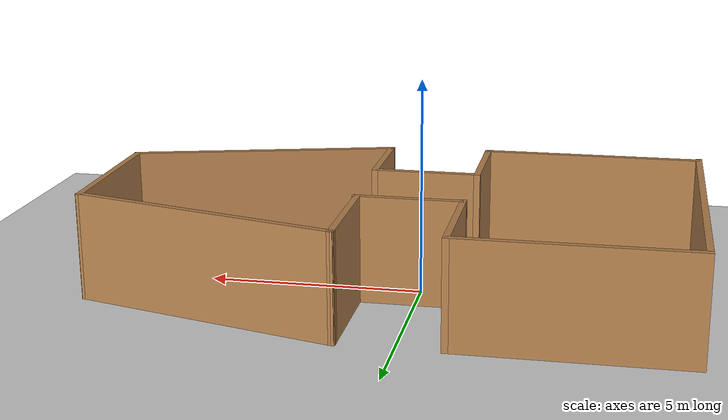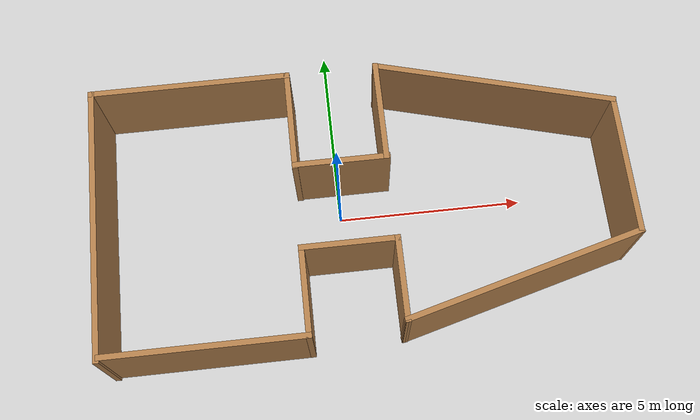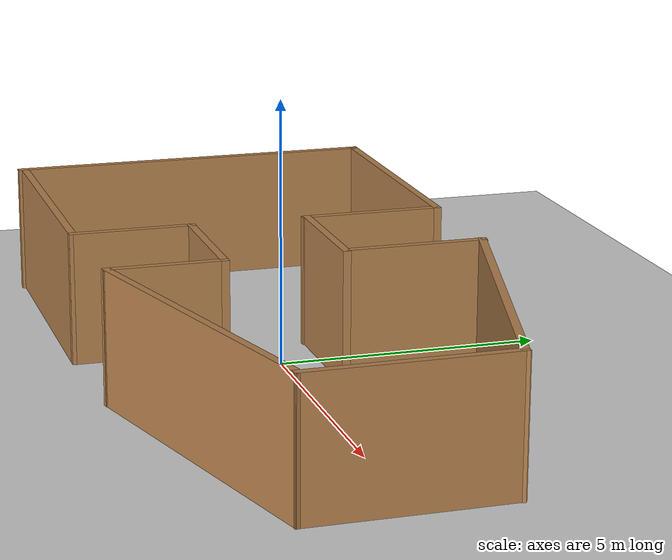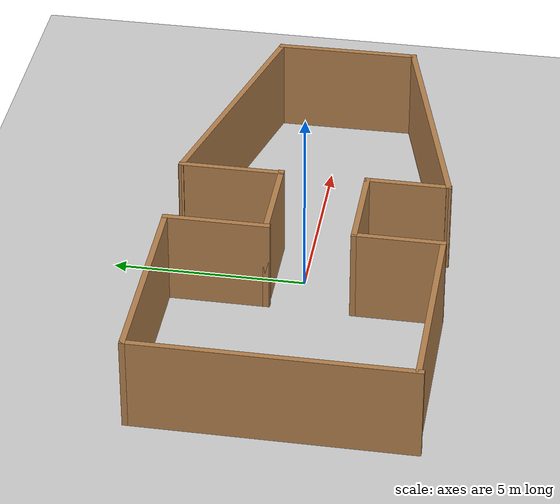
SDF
<sdf version="1.7">
 <world name="default">
  <scene><ambient>0.4 0.4 0.4 1</ambient><background>0.7 0.7 0.7 1</background><shadows>1</shadows></scene>
  <light name="sun" type="directional">
   <pose>0 0 10 0 -0 0</pose>
   <diffuse>0.8 0.8 0.8 1</diffuse>
   <specular>0.2 0.2 0.2 1</specular>
   <attenuation>
    <range>1000</range>
    <constant>0.9</constant>
    <linear>0.01</linear>
    <quadratic>0.001</quadratic>
   </attenuation>
   <direction>-0.5 0.1 -0.9</direction>
   <spot><inner_angle>0</inner_angle><outer_angle>0</outer_angle><falloff>0</falloff></spot>
  </light>
  <model name="ground_plane">
   <static>1</static>
   <link name="link">
    <collision name="collision">
     <geometry><plane><normal>0 0 1</normal><size>100 100</size></plane></geometry>
     <surface>
      <contact><collide_bitmask>65535</collide_bitmask></contact>
      <friction><ode><mu>100</mu><mu2>50</mu2></ode></friction>
     </surface>
    </collision>
    <visual name="visual">
     <cast_shadows>0</cast_shadows>
     <geometry><plane><normal>0 0 1</normal><size>100 100</size></plane></geometry>
     <material>
      <script><uri>file://media/materials/scripts/gazebo.material</uri><name>Gazebo/Grey</name></script>
     </material>
    </visual>
   </link>
  </model>
  <physics type="ode">
   <real_time_update_rate>1000</real_time_update_rate>
   <max_step_size>0.001</max_step_size>
   <real_time_factor>1</real_time_factor>
   <ode>
    <solver>
     <type>quick</type>
     <iters>150</iters>
     <precon_iters>0</precon_iters>
     <sor>1.4</sor>
     <use_dynamic_moi_rescaling>1</use_dynamic_moi_rescaling>
    </solver>
    <constraints>
     <cfm>1e-05</cfm>
     <erp>0.2</erp>
     <contact_max_correcting_vel>2000</contact_max_correcting_vel>
     <contact_surface_layer>0.01</contact_surface_layer>
    </constraints>
   </ode>
  </physics>
  <gravity>0 0 -9.8</gravity>
  <magnetic_field>6e-06 2.3e-05 -4.2e-05</magnetic_field>
  <atmosphere type="adiabatic"/>
  <spherical_coordinates>
   <surface_model>EARTH_WGS84</surface_model>
   <latitude_deg>0</latitude_deg>
   <longitude_deg>0</longitude_deg>
   <elevation>0</elevation>
   <heading_deg>0</heading_deg>
  </spherical_coordinates>
  <model name="room">
   <pose>0.624974 -0.137257 0 0 -0 0</pose>
   <link name="Wall_0">
    <collision name="Wall_0_Collision">
     <geometry><box><size>5.25 0.15 2.5</size></box></geometry>
     <pose>0 0 1.25 0 -0 0</pose>
    </collision>
    <visual name="Wall_0_Visual">
     <pose>0 0 1.25 0 -0 0</pose>
     <geometry><box><size>5.25 0.15 2.5</size></box></geometry>
     <material>
      <script><uri>file://media/materials/scripts/gazebo.material</uri><name>Gazebo/Wood</name></script>
      <ambient>1 1 1 1</ambient>
     </material>
     <meta><layer>0</layer></meta>
    </visual>
    <pose>-4.26638 -3.51023 0 0 -0 0</pose>
   </link>
   <link name="Wall_1">
    <collision name="Wall_1_Collision">
     <geometry><box><size>2.38579 0.15 2.5</size></box></geometry>
     <pose>0 0 1.25 0 -0 0</pose>
    </collision>
    <visual name="Wall_1_Visual">
     <pose>0 0 1.25 0 -0 0</pose>
     <geometry><box><size>2.38579 0.15 2.5</size></box></geometry>
     <material>
      <script><uri>file://media/materials/scripts/gazebo.material</uri><name>Gazebo/Wood</name></script>
      <ambient>1 1 1 1</ambient>
     </material>
     <meta><layer>0</layer></meta>
    </visual>
    <pose>-1.71538 -2.39273 0 0 -0 1.5699</pose>
   </link>
   <link name="Wall_10">
    <collision name="Wall_10_Collision">
     <geometry><box><size>5.34538 0.15 2.5</size></box></geometry>
     <pose>0 0 1.25 0 -0 0</pose>
    </collision>
    <visual name="Wall_10_Visual">
     <pose>0 0 1.25 0 -0 0</pose>
     <geometry><box><size>5.34538 0.15 2.5</size></box></geometry>
     <material>
      <script><uri>file://media/materials/scripts/gazebo.material</uri><name>Gazebo/Wood</name></script>
      <ambient>1 1 1 1</ambient>
     </material>
     <meta><layer>0</layer></meta>
    </visual>
    <pose>-4.28041 3.52827 0 0 -0 3.14159</pose>
   </link>
   <link name="Wall_11">
    <collision name="Wall_11_Collision">
     <geometry><box><size>7.25 0.15 2.5</size></box></geometry>
     <pose>0 0 1.25 0 -0 0</pose>
    </collision>
    <visual name="Wall_11_Visual">
     <pose>0 0 1.25 0 -0 0</pose>
     <geometry><box><size>7.25 0.15 2.5</size></box></geometry>
     <material>
      <script><uri>file://media/materials/scripts/gazebo.material</uri><name>Gazebo/Wood</name></script>
      <ambient>1 1 1 1</ambient>
     </material>
     <meta><layer>0</layer></meta>
    </visual>
    <pose>-6.8781 -0.021728 0 0 -0 -1.5708</pose>
   </link>
   <link name="Wall_2">
    <collision name="Wall_2_Collision">
     <geometry><box><size>2.59211 0.15 2.5</size></box></geometry>
     <pose>0 0 1.25 0 -0 0</pose>
    </collision>
    <visual name="Wall_2_Visual">
     <pose>0 0 1.25 0 -0 0</pose>
     <geometry><box><size>2.59211 0.15 2.5</size></box></geometry>
     <material>
      <script><uri>file://media/materials/scripts/gazebo.material</uri><name>Gazebo/Wood</name></script>
      <ambient>1 1 1 1</ambient>
     </material>
     <meta><layer>0</layer></meta>
    </visual>
    <pose>-0.493384 -1.27523 0 0 -0 0</pose>
   </link>
   <link name="Wall_3">
    <collision name="Wall_3_Collision">
     <geometry><box><size>2.25 0.15 2.5</size></box></geometry>
     <pose>0 0 1.25 0 -0 0</pose>
    </collision>
    <visual name="Wall_3_Visual">
     <pose>0 0 1.25 0 -0 0</pose>
     <geometry><box><size>2.25 0.15 2.5</size></box></geometry>
     <material>
      <script><uri>file://media/materials/scripts/gazebo.material</uri><name>Gazebo/Wood</name></script>
      <ambient>1 1 1 1</ambient>
     </material>
     <meta><layer>0</layer></meta>
    </visual>
    <pose>0.727616 -2.32523 0 0 -0 -1.5708</pose>
   </link>
   <link name="Wall_4">
    <collision name="Wall_4_Collision">
     <geometry><box><size>6.5 0.15 2.5</size></box></geometry>
     <pose>0 0 1.25 0 -0 0</pose>
    </collision>
    <visual name="Wall_4_Visual">
     <pose>0 0 1.25 0 -0 0</pose>
     <geometry><box><size>6.5 0.15 2.5</size></box></geometry>
     <material>
      <script><uri>file://media/materials/scripts/gazebo.material</uri><name>Gazebo/Wood</name></script>
      <ambient>1 1 1 1</ambient>
     </material>
     <meta><layer>0</layer></meta>
    </visual>
    <pose>3.79443 -2.55348 0 0 -0 0.261799</pose>
   </link>
   <link name="Wall_5">
    <collision name="Wall_5_Collision">
     <geometry><box><size>3.79322 0.15 2.5</size></box></geometry>
     <pose>0 0 1.25 0 -0 0</pose>
    </collision>
    <visual name="Wall_5_Visual">
     <pose>0 0 1.25 0 -0 0</pose>
     <geometry><box><size>3.79322 0.15 2.5</size></box></geometry>
     <material>
      <script><uri>file://media/materials/scripts/gazebo.material</uri><name>Gazebo/Wood</name></script>
      <ambient>1 1 1 1</ambient>
     </material>
     <meta><layer>0</layer></meta>
    </visual>
    <pose>6.84637 0.089822 0 0 -0 1.57896</pose>
   </link>
   <link name="Wall_6">
    <collision name="Wall_6_Collision">
     <geometry><box><size>6.5 0.15 2.5</size></box></geometry>
     <pose>0 0 1.25 0 -0 0</pose>
    </collision>
    <visual name="Wall_6_Visual">
     <pose>0 0 1.25 0 -0 0</pose>
     <geometry><box><size>6.5 0.15 2.5</size></box></geometry>
     <material>
      <script><uri>file://media/materials/scripts/gazebo.material</uri><name>Gazebo/Wood</name></script>
      <ambient>1 1 1 1</ambient>
     </material>
     <meta><layer>0</layer></meta>
    </visual>
    <pose>3.76469 2.73312 0 0 -0 2.87979</pose>
   </link>
   <link name="Wall_7">
    <collision name="Wall_7_Collision">
     <geometry><box><size>2.75 0.15 2.5</size></box></geometry>
     <pose>0 0 1.25 0 -0 0</pose>
    </collision>
    <visual name="Wall_7_Visual">
     <pose>0 0 1.25 0 -0 0</pose>
     <geometry><box><size>2.75 0.15 2.5</size></box></geometry>
     <material>
      <script><uri>file://media/materials/scripts/gazebo.material</uri><name>Gazebo/Wood</name></script>
      <ambient>1 1 1 1</ambient>
     </material>
     <meta><layer>0</layer></meta>
    </visual>
    <pose>0.697873 2.25487 0 0 -0 -1.5708</pose>
   </link>
   <link name="Wall_8">
    <collision name="Wall_8_Collision">
     <geometry><box><size>2.56118 0.15 2.5</size></box></geometry>
     <pose>0 0 1.25 0 -0 0</pose>
    </collision>
    <visual name="Wall_8_Visual">
     <pose>0 0 1.25 0 -0 0</pose>
     <geometry><box><size>2.56118 0.15 2.5</size></box></geometry>
     <material>
      <script><uri>file://media/materials/scripts/gazebo.material</uri><name>Gazebo/Wood</name></script>
      <ambient>1 1 1 1</ambient>
     </material>
     <meta><layer>0</layer></meta>
    </visual>
    <pose>-0.477127 0.954872 0 0 -0 3.14159</pose>
   </link>
   <link name="Wall_9">
    <collision name="Wall_9_Collision">
     <geometry><box><size>2.75 0.15 2.5</size></box></geometry>
     <pose>0 0 1.25 0 -0 0</pose>
    </collision>
    <visual name="Wall_9_Visual">
     <pose>0 0 1.25 0 -0 0</pose>
     <geometry><box><size>2.75 0.15 2.5</size></box></geometry>
     <material>
      <script><uri>file://media/materials/scripts/gazebo.material</uri><name>Gazebo/Wood</name></script>
      <ambient>1 1 1 1</ambient>
     </material>
     <meta><layer>0</layer></meta>
    </visual>
    <pose>-1.68272 2.22827 0 0 -0 1.5708</pose>
   </link>
   <static>1</static>
  </model>
 </world>
</sdf>
